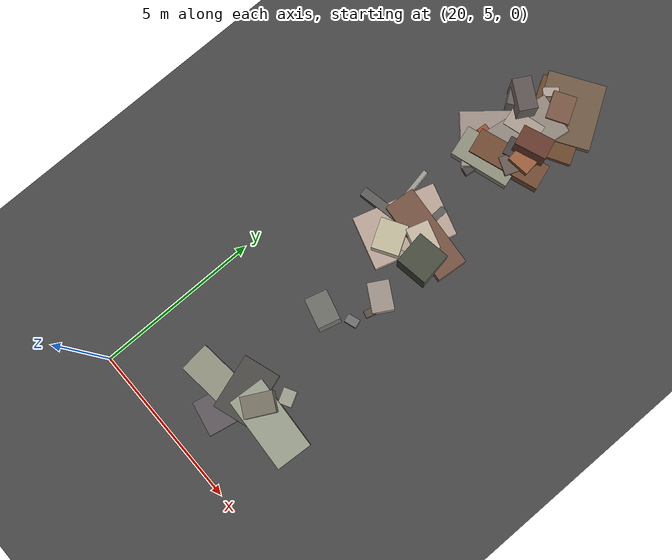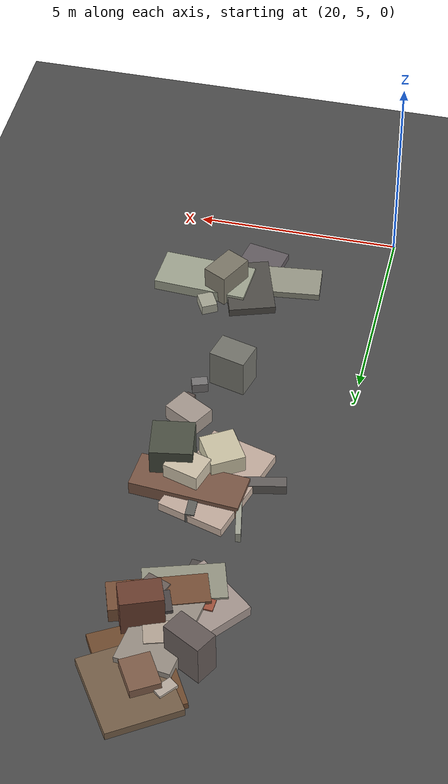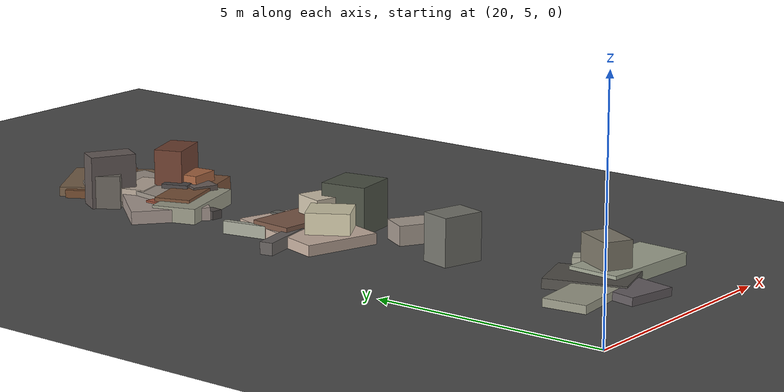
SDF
<sdf version="1.6">
 <world name="navitas_arena">
  <model name="ground_plane">
   <static>true</static>
   <link name="link">
    <collision name="collision">
     <geometry><plane><normal>0 0 1</normal><size>400 400</size></plane></geometry>
     <surface><friction><ode><mu>0.800</mu><mu2>0.800</mu2></ode></friction></surface>
    </collision>
    <visual name="visual">
     <cast_shadows>false</cast_shadows>
     <geometry><plane><normal>0 0 1</normal><size>400 400</size></plane></geometry>
     <material>
      <specular>0.04 0.04 0.04 1</specular>
      <script>
       <uri>file://media/materials/scripts/navitas_asphalt.material</uri>
       <name>Navitas/RealArenaAsphalt</name>
      </script>
     </material>
    </visual>
   </link>
  </model>
  <model name="deb_orta_0">
   <static>true</static>
   <pose>23.046 13.756 0.000 0 0 0</pose>
   <link name="link">
    <collision name="col_0">
     <pose>0.300 -0.395 0.130 0.000 0.000 0.429</pose>
     <geometry><box><size>1.065 0.187 0.261</size></box></geometry>
    </collision>
    <visual name="vis_0">
     <pose>0.300 -0.395 0.130 0.000 0.000 0.429</pose>
     <geometry><box><size>1.065 0.187 0.261</size></box></geometry>
     <material>
      <ambient>0.64 0.60 0.54 1</ambient>
      <diffuse>0.69 0.64 0.58 1</diffuse>
      <specular>0.05 0.05 0.045 1</specular>
     </material>
    </visual>
    <collision name="col_1">
     <pose>0.120 0.387 0.176 0.000 0.000 -0.086</pose>
     <geometry><box><size>2.604 0.951 0.352</size></box></geometry>
    </collision>
    <visual name="vis_1">
     <pose>0.120 0.387 0.176 0.000 0.000 -0.086</pose>
     <geometry><box><size>2.604 0.951 0.352</size></box></geometry>
     <material>
      <ambient>0.46 0.32 0.26 1</ambient>
      <diffuse>0.49 0.35 0.28 1</diffuse>
      <specular>0.05 0.05 0.045 1</specular>
     </material>
    </visual>
    <collision name="col_2">
     <pose>-0.471 0.104 0.116 0.000 0.000 1.279</pose>
     <geometry><box><size>2.558 1.631 0.231</size></box></geometry>
    </collision>
    <visual name="vis_2">
     <pose>-0.471 0.104 0.116 0.000 0.000 1.279</pose>
     <geometry><box><size>2.558 1.631 0.231</size></box></geometry>
     <material>
      <ambient>0.72 0.64 0.58 1</ambient>
      <diffuse>0.78 0.69 0.63 1</diffuse>
      <specular>0.05 0.05 0.045 1</specular>
     </material>
    </visual>
    <collision name="col_3">
     <pose>-0.597 -0.077 0.092 0.000 0.000 0.072</pose>
     <geometry><box><size>0.305 0.445 0.184</size></box></geometry>
    </collision>
    <visual name="vis_3">
     <pose>-0.597 -0.077 0.092 0.000 0.000 0.072</pose>
     <geometry><box><size>0.305 0.445 0.184</size></box></geometry>
     <material>
      <ambient>0.35 0.33 0.31 1</ambient>
      <diffuse>0.38 0.36 0.34 1</diffuse>
      <specular>0.05 0.05 0.045 1</specular>
     </material>
    </visual>
   </link>
  </model>
  <model name="deb_orta_25">
   <static>true</static>
   <pose>22.710 17.313 0.000 0 0 0</pose>
   <link name="link">
    <collision name="col_0">
     <pose>0.329 0.282 0.139 0.000 0.000 3.646</pose>
     <geometry><box><size>0.196 0.266 0.279</size></box></geometry>
    </collision>
    <visual name="vis_0">
     <pose>0.329 0.282 0.139 0.000 0.000 3.646</pose>
     <geometry><box><size>0.196 0.266 0.279</size></box></geometry>
     <material>
      <ambient>0.30 0.28 0.28 1</ambient>
      <diffuse>0.32 0.30 0.31 1</diffuse>
      <specular>0.05 0.05 0.045 1</specular>
     </material>
    </visual>
    <collision name="col_1">
     <pose>0.397 0.122 0.174 0.000 0.000 2.142</pose>
     <geometry><box><size>0.183 0.192 0.348</size></box></geometry>
    </collision>
    <visual name="vis_1">
     <pose>0.397 0.122 0.174 0.000 0.000 2.142</pose>
     <geometry><box><size>0.183 0.192 0.348</size></box></geometry>
     <material>
      <ambient>0.30 0.30 0.30 1</ambient>
      <diffuse>0.32 0.33 0.33 1</diffuse>
      <specular>0.05 0.05 0.045 1</specular>
     </material>
    </visual>
    <collision name="col_2">
     <pose>-0.358 0.132 0.156 0.000 0.000 3.080</pose>
     <geometry><box><size>1.092 0.310 0.313</size></box></geometry>
    </collision>
    <visual name="vis_2">
     <pose>-0.358 0.132 0.156 0.000 0.000 3.080</pose>
     <geometry><box><size>1.092 0.310 0.313</size></box></geometry>
     <material>
      <ambient>0.59 0.31 0.22 1</ambient>
      <diffuse>0.64 0.33 0.24 1</diffuse>
      <specular>0.05 0.05 0.045 1</specular>
     </material>
    </visual>
    <collision name="col_3">
     <pose>0.358 0.125 0.197 0.000 0.000 3.471</pose>
     <geometry><box><size>2.241 0.785 0.393</size></box></geometry>
    </collision>
    <visual name="vis_3">
     <pose>0.358 0.125 0.197 0.000 0.000 3.471</pose>
     <geometry><box><size>2.241 0.785 0.393</size></box></geometry>
     <material>
      <ambient>0.44 0.29 0.20 1</ambient>
      <diffuse>0.48 0.32 0.22 1</diffuse>
      <specular>0.05 0.05 0.045 1</specular>
     </material>
    </visual>
    <collision name="col_4">
     <pose>-0.129 -0.293 0.164 0.000 0.000 3.441</pose>
     <geometry><box><size>1.838 0.967 0.329</size></box></geometry>
    </collision>
    <visual name="vis_4">
     <pose>-0.129 -0.293 0.164 0.000 0.000 3.441</pose>
     <geometry><box><size>1.838 0.967 0.329</size></box></geometry>
     <material>
      <ambient>0.56 0.55 0.49 1</ambient>
      <diffuse>0.60 0.60 0.53 1</diffuse>
      <specular>0.05 0.05 0.045 1</specular>
     </material>
    </visual>
    <collision name="col_5">
     <pose>-0.474 0.160 0.137 0.000 0.000 2.452</pose>
     <geometry><box><size>1.651 1.757 0.274</size></box></geometry>
    </collision>
    <visual name="vis_5">
     <pose>-0.474 0.160 0.137 0.000 0.000 2.452</pose>
     <geometry><box><size>1.651 1.757 0.274</size></box></geometry>
     <material>
      <ambient>0.61 0.55 0.53 1</ambient>
      <diffuse>0.66 0.60 0.57 1</diffuse>
      <specular>0.05 0.05 0.045 1</specular>
     </material>
    </visual>
   </link>
  </model>
  <model name="deb_orta_124">
   <static>true</static>
   <pose>23.177 13.627 0.000 0 0 0</pose>
   <link name="link">
    <collision name="col_0">
     <pose>0.519 -0.106 0.508 0.000 0.000 1.727</pose>
     <geometry><box><size>0.997 0.992 1.015</size></box></geometry>
    </collision>
    <visual name="vis_0">
     <pose>0.519 -0.106 0.508 0.000 0.000 1.727</pose>
     <geometry><box><size>0.997 0.992 1.015</size></box></geometry>
     <material>
      <ambient>0.28 0.29 0.25 1</ambient>
      <diffuse>0.30 0.32 0.27 1</diffuse>
      <specular>0.05 0.05 0.045 1</specular>
     </material>
    </visual>
    <collision name="col_1">
     <pose>-0.322 0.974 0.101 0.000 0.000 1.176</pose>
     <geometry><box><size>0.290 0.166 0.202</size></box></geometry>
    </collision>
    <visual name="vis_1">
     <pose>-0.322 0.974 0.101 0.000 0.000 1.176</pose>
     <geometry><box><size>0.290 0.166 0.202</size></box></geometry>
     <material>
      <ambient>0.64 0.37 0.26 1</ambient>
      <diffuse>0.69 0.39 0.28 1</diffuse>
      <specular>0.05 0.05 0.045 1</specular>
     </material>
    </visual>
    <collision name="col_2">
     <pose>-0.582 -0.354 0.341 0.000 0.000 2.109</pose>
     <geometry><box><size>0.919 0.825 0.683</size></box></geometry>
    </collision>
    <visual name="vis_2">
     <pose>-0.582 -0.354 0.341 0.000 0.000 2.109</pose>
     <geometry><box><size>0.919 0.825 0.683</size></box></geometry>
     <material>
      <ambient>0.75 0.72 0.61 1</ambient>
      <diffuse>0.81 0.78 0.66 1</diffuse>
      <specular>0.05 0.05 0.045 1</specular>
     </material>
    </visual>
    <collision name="col_3">
     <pose>-0.633 -0.574 0.088 0.000 0.000 1.496</pose>
     <geometry><box><size>0.363 0.410 0.177</size></box></geometry>
    </collision>
    <visual name="vis_3">
     <pose>-0.633 -0.574 0.088 0.000 0.000 1.496</pose>
     <geometry><box><size>0.363 0.410 0.177</size></box></geometry>
     <material>
      <ambient>0.39 0.36 0.32 1</ambient>
      <diffuse>0.42 0.39 0.35 1</diffuse>
      <specular>0.05 0.05 0.045 1</specular>
     </material>
    </visual>
    <collision name="col_4">
     <pose>-0.211 0.856 0.135 0.000 0.000 1.610</pose>
     <geometry><box><size>1.165 0.214 0.269</size></box></geometry>
    </collision>
    <visual name="vis_4">
     <pose>-0.211 0.856 0.135 0.000 0.000 1.610</pose>
     <geometry><box><size>1.165 0.214 0.269</size></box></geometry>
     <material>
      <ambient>0.36 0.36 0.34 1</ambient>
      <diffuse>0.39 0.39 0.37 1</diffuse>
      <specular>0.05 0.05 0.045 1</specular>
     </material>
    </visual>
    <collision name="col_5">
     <pose>-0.300 0.706 0.091 0.000 0.000 1.250</pose>
     <geometry><box><size>0.223 0.459 0.181</size></box></geometry>
    </collision>
    <visual name="vis_5">
     <pose>-0.300 0.706 0.091 0.000 0.000 1.250</pose>
     <geometry><box><size>0.223 0.459 0.181</size></box></geometry>
     <material>
      <ambient>0.49 0.37 0.30 1</ambient>
      <diffuse>0.53 0.39 0.32 1</diffuse>
      <specular>0.05 0.05 0.045 1</specular>
     </material>
    </visual>
   </link>
  </model>
  <model name="deb_orta_163">
   <static>true</static>
   <pose>22.908 14.654 0.000 0 0 0</pose>
   <link name="link">
    <collision name="col_0">
     <pose>0.348 -0.711 0.371 0.000 0.000 2.847</pose>
     <geometry><box><size>0.872 0.686 0.742</size></box></geometry>
    </collision>
    <visual name="vis_0">
     <pose>0.348 -0.711 0.371 0.000 0.000 2.847</pose>
     <geometry><box><size>0.872 0.686 0.742</size></box></geometry>
     <material>
      <ambient>0.76 0.72 0.63 1</ambient>
      <diffuse>0.82 0.77 0.68 1</diffuse>
      <specular>0.05 0.05 0.045 1</specular>
     </material>
    </visual>
    <collision name="col_1">
     <pose>0.300 -0.875 0.090 0.000 0.000 2.169</pose>
     <geometry><box><size>0.377 0.238 0.180</size></box></geometry>
    </collision>
    <visual name="vis_1">
     <pose>0.300 -0.875 0.090 0.000 0.000 2.169</pose>
     <geometry><box><size>0.377 0.238 0.180</size></box></geometry>
     <material>
      <ambient>0.63 0.62 0.54 1</ambient>
      <diffuse>0.68 0.67 0.59 1</diffuse>
      <specular>0.05 0.05 0.045 1</specular>
     </material>
    </visual>
    <collision name="col_2">
     <pose>-1.018 0.041 0.135 0.000 0.000 1.758</pose>
     <geometry><box><size>1.400 0.126 0.269</size></box></geometry>
    </collision>
    <visual name="vis_2">
     <pose>-1.018 0.041 0.135 0.000 0.000 1.758</pose>
     <geometry><box><size>1.400 0.126 0.269</size></box></geometry>
     <material>
      <ambient>0.60 0.61 0.56 1</ambient>
      <diffuse>0.65 0.66 0.60 1</diffuse>
      <specular>0.05 0.05 0.045 1</specular>
     </material>
    </visual>
    <collision name="col_3">
     <pose>-0.913 -0.833 0.129 0.000 0.000 3.338</pose>
     <geometry><box><size>2.005 0.281 0.259</size></box></geometry>
    </collision>
    <visual name="vis_3">
     <pose>-0.913 -0.833 0.129 0.000 0.000 3.338</pose>
     <geometry><box><size>2.005 0.281 0.259</size></box></geometry>
     <material>
      <ambient>0.37 0.35 0.34 1</ambient>
      <diffuse>0.40 0.38 0.37 1</diffuse>
      <specular>0.05 0.05 0.045 1</specular>
     </material>
    </visual>
   </link>
  </model>
  <model name="deb_orta_179">
   <static>true</static>
   <pose>22.877 11.279 0.000 0 0 0</pose>
   <link name="link">
    <collision name="col_0">
     <pose>0.972 0.274 0.102 0.000 0.000 2.866</pose>
     <geometry><box><size>0.213 0.478 0.205</size></box></geometry>
    </collision>
    <visual name="vis_0">
     <pose>0.972 0.274 0.102 0.000 0.000 2.866</pose>
     <geometry><box><size>0.213 0.478 0.205</size></box></geometry>
     <material>
      <ambient>0.34 0.29 0.28 1</ambient>
      <diffuse>0.37 0.32 0.30 1</diffuse>
      <specular>0.05 0.05 0.045 1</specular>
     </material>
    </visual>
    <collision name="col_1">
     <pose>0.092 -0.798 0.499 0.000 0.000 2.880</pose>
     <geometry><box><size>0.901 0.676 0.997</size></box></geometry>
    </collision>
    <visual name="vis_1">
     <pose>0.092 -0.798 0.499 0.000 0.000 2.880</pose>
     <geometry><box><size>0.901 0.676 0.997</size></box></geometry>
     <material>
      <ambient>0.42 0.42 0.40 1</ambient>
      <diffuse>0.46 0.46 0.43 1</diffuse>
      <specular>0.05 0.05 0.045 1</specular>
     </material>
    </visual>
    <collision name="col_2">
     <pose>0.805 -0.344 0.127 0.000 0.000 1.899</pose>
     <geometry><box><size>0.260 0.381 0.254</size></box></geometry>
    </collision>
    <visual name="vis_2">
     <pose>0.805 -0.344 0.127 0.000 0.000 1.899</pose>
     <geometry><box><size>0.260 0.381 0.254</size></box></geometry>
     <material>
      <ambient>0.43 0.42 0.42 1</ambient>
      <diffuse>0.47 0.46 0.46 1</diffuse>
      <specular>0.05 0.05 0.045 1</specular>
     </material>
    </visual>
    <collision name="col_3">
     <pose>0.816 0.711 0.209 0.000 0.000 2.622</pose>
     <geometry><box><size>0.884 0.643 0.417</size></box></geometry>
    </collision>
    <visual name="vis_3">
     <pose>0.816 0.711 0.209 0.000 0.000 2.622</pose>
     <geometry><box><size>0.884 0.643 0.417</size></box></geometry>
     <material>
      <ambient>0.61 0.57 0.53 1</ambient>
      <diffuse>0.66 0.61 0.57 1</diffuse>
      <specular>0.05 0.05 0.045 1</specular>
     </material>
    </visual>
   </link>
  </model>
  <model name="deb_orta_201">
   <static>true</static>
   <pose>22.341 18.041 0.000 0 0 0</pose>
   <link name="link">
    <collision name="col_0">
     <pose>0.258 0.394 0.197 0.000 0.000 0.284</pose>
     <geometry><box><size>1.084 0.573 0.395</size></box></geometry>
    </collision>
    <visual name="vis_0">
     <pose>0.258 0.394 0.197 0.000 0.000 0.284</pose>
     <geometry><box><size>1.084 0.573 0.395</size></box></geometry>
     <material>
      <ambient>0.67 0.61 0.55 1</ambient>
      <diffuse>0.72 0.66 0.60 1</diffuse>
      <specular>0.05 0.05 0.045 1</specular>
     </material>
    </visual>
    <collision name="col_1">
     <pose>-0.521 0.692 0.351 0.000 0.000 -0.941</pose>
     <geometry><box><size>0.561 0.383 0.702</size></box></geometry>
    </collision>
    <visual name="vis_1">
     <pose>-0.521 0.692 0.351 0.000 0.000 -0.941</pose>
     <geometry><box><size>0.561 0.383 0.702</size></box></geometry>
     <material>
      <ambient>0.39 0.37 0.34 1</ambient>
      <diffuse>0.42 0.40 0.37 1</diffuse>
      <specular>0.05 0.05 0.045 1</specular>
     </material>
    </visual>
    <collision name="col_2">
     <pose>0.928 0.053 0.577 0.000 0.000 0.365</pose>
     <geometry><box><size>0.968 0.618 1.154</size></box></geometry>
    </collision>
    <visual name="vis_2">
     <pose>0.928 0.053 0.577 0.000 0.000 0.365</pose>
     <geometry><box><size>0.968 0.618 1.154</size></box></geometry>
     <material>
      <ambient>0.40 0.23 0.18 1</ambient>
      <diffuse>0.43 0.25 0.19 1</diffuse>
      <specular>0.05 0.05 0.045 1</specular>
     </material>
    </visual>
    <collision name="col_3">
     <pose>-0.322 0.813 0.556 0.000 0.000 -0.513</pose>
     <geometry><box><size>0.976 0.556 1.112</size></box></geometry>
    </collision>
    <visual name="vis_3">
     <pose>-0.322 0.813 0.556 0.000 0.000 -0.513</pose>
     <geometry><box><size>0.976 0.556 1.112</size></box></geometry>
     <material>
      <ambient>0.37 0.33 0.32 1</ambient>
      <diffuse>0.40 0.36 0.35 1</diffuse>
      <specular>0.05 0.05 0.045 1</specular>
     </material>
    </visual>
    <collision name="col_4">
     <pose>0.234 0.300 0.184 0.000 0.000 -0.264</pose>
     <geometry><box><size>0.727 0.544 0.369</size></box></geometry>
    </collision>
    <visual name="vis_4">
     <pose>0.234 0.300 0.184 0.000 0.000 -0.264</pose>
     <geometry><box><size>0.727 0.544 0.369</size></box></geometry>
     <material>
      <ambient>0.48 0.45 0.39 1</ambient>
      <diffuse>0.52 0.48 0.43 1</diffuse>
      <specular>0.05 0.05 0.045 1</specular>
     </material>
    </visual>
    <collision name="col_5">
     <pose>0.285 -0.680 0.091 0.000 0.000 1.446</pose>
     <geometry><box><size>2.267 0.240 0.182</size></box></geometry>
    </collision>
    <visual name="vis_5">
     <pose>0.285 -0.680 0.091 0.000 0.000 1.446</pose>
     <geometry><box><size>2.267 0.240 0.182</size></box></geometry>
     <material>
      <ambient>0.30 0.28 0.27 1</ambient>
      <diffuse>0.32 0.30 0.29 1</diffuse>
      <specular>0.05 0.05 0.045 1</specular>
     </material>
    </visual>
   </link>
  </model>
  <model name="deb_orta_206">
   <static>true</static>
   <pose>22.812 17.732 0.000 0 0 0</pose>
   <link name="link">
    <collision name="col_0">
     <pose>0.564 0.025 0.310 0.000 0.000 1.688</pose>
     <geometry><box><size>0.712 0.683 0.619</size></box></geometry>
    </collision>
    <visual name="vis_0">
     <pose>0.564 0.025 0.310 0.000 0.000 1.688</pose>
     <geometry><box><size>0.712 0.683 0.619</size></box></geometry>
     <material>
      <ambient>0.61 0.37 0.24 1</ambient>
      <diffuse>0.66 0.40 0.26 1</diffuse>
      <specular>0.05 0.05 0.045 1</specular>
     </material>
    </visual>
    <collision name="col_1">
     <pose>0.476 -0.169 0.220 0.000 0.000 1.196</pose>
     <geometry><box><size>0.977 0.570 0.440</size></box></geometry>
    </collision>
    <visual name="vis_1">
     <pose>0.476 -0.169 0.220 0.000 0.000 1.196</pose>
     <geometry><box><size>0.977 0.570 0.440</size></box></geometry>
     <material>
      <ambient>0.40 0.35 0.33 1</ambient>
      <diffuse>0.43 0.38 0.36 1</diffuse>
      <specular>0.05 0.05 0.045 1</specular>
     </material>
    </visual>
    <collision name="col_2">
     <pose>0.119 0.004 0.232 0.000 0.000 0.363</pose>
     <geometry><box><size>0.458 0.578 0.465</size></box></geometry>
    </collision>
    <visual name="vis_2">
     <pose>0.119 0.004 0.232 0.000 0.000 0.363</pose>
     <geometry><box><size>0.458 0.578 0.465</size></box></geometry>
     <material>
      <ambient>0.28 0.26 0.26 1</ambient>
      <diffuse>0.30 0.28 0.28 1</diffuse>
      <specular>0.05 0.05 0.045 1</specular>
     </material>
    </visual>
    <collision name="col_3">
     <pose>-0.030 0.617 0.186 0.000 0.000 1.426</pose>
     <geometry><box><size>2.165 1.289 0.373</size></box></geometry>
    </collision>
    <visual name="vis_3">
     <pose>-0.030 0.617 0.186 0.000 0.000 1.426</pose>
     <geometry><box><size>2.165 1.289 0.373</size></box></geometry>
     <material>
      <ambient>0.56 0.53 0.49 1</ambient>
      <diffuse>0.61 0.57 0.53 1</diffuse>
      <specular>0.05 0.05 0.045 1</specular>
     </material>
    </visual>
   </link>
  </model>
  <model name="deb_orta_265">
   <static>true</static>
   <pose>23.057 19.463 0.000 0 0 0</pose>
   <link name="link">
    <collision name="col_0">
     <pose>-0.139 0.144 0.219 0.000 0.000 2.104</pose>
     <geometry><box><size>0.868 0.703 0.438</size></box></geometry>
    </collision>
    <visual name="vis_0">
     <pose>-0.139 0.144 0.219 0.000 0.000 2.104</pose>
     <geometry><box><size>0.868 0.703 0.438</size></box></geometry>
     <material>
      <ambient>0.47 0.35 0.27 1</ambient>
      <diffuse>0.51 0.37 0.29 1</diffuse>
      <specular>0.05 0.05 0.045 1</specular>
     </material>
    </visual>
    <collision name="col_1">
     <pose>0.008 -0.105 0.086 0.000 0.000 2.087</pose>
     <geometry><box><size>2.364 1.599 0.172</size></box></geometry>
    </collision>
    <visual name="vis_1">
     <pose>0.008 -0.105 0.086 0.000 0.000 2.087</pose>
     <geometry><box><size>2.364 1.599 0.172</size></box></geometry>
     <material>
      <ambient>0.41 0.28 0.18 1</ambient>
      <diffuse>0.45 0.30 0.19 1</diffuse>
      <specular>0.05 0.05 0.045 1</specular>
     </material>
    </visual>
    <collision name="col_2">
     <pose>-0.421 -0.453 0.080 0.000 0.000 2.438</pose>
     <geometry><box><size>0.476 0.168 0.160</size></box></geometry>
    </collision>
    <visual name="vis_2">
     <pose>-0.421 -0.453 0.080 0.000 0.000 2.438</pose>
     <geometry><box><size>0.476 0.168 0.160</size></box></geometry>
     <material>
      <ambient>0.29 0.28 0.26 1</ambient>
      <diffuse>0.31 0.31 0.28 1</diffuse>
      <specular>0.05 0.05 0.045 1</specular>
     </material>
    </visual>
    <collision name="col_3">
     <pose>-0.718 0.301 0.134 0.000 0.000 2.463</pose>
     <geometry><box><size>0.272 0.475 0.268</size></box></geometry>
    </collision>
    <visual name="vis_3">
     <pose>-0.718 0.301 0.134 0.000 0.000 2.463</pose>
     <geometry><box><size>0.272 0.475 0.268</size></box></geometry>
     <material>
      <ambient>0.67 0.63 0.58 1</ambient>
      <diffuse>0.73 0.68 0.63 1</diffuse>
      <specular>0.05 0.05 0.045 1</specular>
     </material>
    </visual>
    <collision name="col_4">
     <pose>-0.040 -0.743 0.139 0.000 0.000 2.588</pose>
     <geometry><box><size>0.272 0.187 0.277</size></box></geometry>
    </collision>
    <visual name="vis_4">
     <pose>-0.040 -0.743 0.139 0.000 0.000 2.588</pose>
     <geometry><box><size>0.272 0.187 0.277</size></box></geometry>
     <material>
      <ambient>0.41 0.26 0.21 1</ambient>
      <diffuse>0.44 0.28 0.23 1</diffuse>
      <specular>0.05 0.05 0.045 1</specular>
     </material>
    </visual>
    <collision name="col_5">
     <pose>-0.193 0.218 0.088 0.000 0.000 2.245</pose>
     <geometry><box><size>0.229 0.326 0.176</size></box></geometry>
    </collision>
    <visual name="vis_5">
     <pose>-0.193 0.218 0.088 0.000 0.000 2.245</pose>
     <geometry><box><size>0.229 0.326 0.176</size></box></geometry>
     <material>
      <ambient>0.45 0.35 0.24 1</ambient>
      <diffuse>0.49 0.38 0.26 1</diffuse>
      <specular>0.05 0.05 0.045 1</specular>
     </material>
    </visual>
    <collision name="col_6">
     <pose>0.044 0.341 0.104 0.000 0.000 2.143</pose>
     <geometry><box><size>2.041 1.754 0.207</size></box></geometry>
    </collision>
    <visual name="vis_6">
     <pose>0.044 0.341 0.104 0.000 0.000 2.143</pose>
     <geometry><box><size>2.041 1.754 0.207</size></box></geometry>
     <material>
      <ambient>0.44 0.35 0.27 1</ambient>
      <diffuse>0.47 0.38 0.29 1</diffuse>
      <specular>0.05 0.05 0.045 1</specular>
     </material>
    </visual>
   </link>
  </model>
  <model name="deb_orta_271">
   <static>true</static>
   <pose>23.413 7.584 0.000 0 0 0</pose>
   <link name="link">
    <collision name="col_0">
     <pose>-0.158 -0.190 0.102 0.000 0.000 1.887</pose>
     <geometry><box><size>1.670 1.141 0.203</size></box></geometry>
    </collision>
    <visual name="vis_0">
     <pose>-0.158 -0.190 0.102 0.000 0.000 1.887</pose>
     <geometry><box><size>1.670 1.141 0.203</size></box></geometry>
     <material>
      <ambient>0.30 0.29 0.27 1</ambient>
      <diffuse>0.32 0.31 0.29 1</diffuse>
      <specular>0.05 0.05 0.045 1</specular>
     </material>
    </visual>
    <collision name="col_1">
     <pose>0.981 -0.268 0.139 0.000 0.000 -0.061</pose>
     <geometry><box><size>2.304 1.112 0.278</size></box></geometry>
    </collision>
    <visual name="vis_1">
     <pose>0.981 -0.268 0.139 0.000 0.000 -0.061</pose>
     <geometry><box><size>2.304 1.112 0.278</size></box></geometry>
     <material>
      <ambient>0.59 0.61 0.54 1</ambient>
      <diffuse>0.64 0.66 0.58 1</diffuse>
      <specular>0.05 0.05 0.045 1</specular>
     </material>
    </visual>
    <collision name="col_2">
     <pose>0.732 0.573 0.127 0.000 0.000 2.070</pose>
     <geometry><box><size>0.469 0.390 0.254</size></box></geometry>
    </collision>
    <visual name="vis_2">
     <pose>0.732 0.573 0.127 0.000 0.000 2.070</pose>
     <geometry><box><size>0.469 0.390 0.254</size></box></geometry>
     <material>
      <ambient>0.61 0.61 0.54 1</ambient>
      <diffuse>0.66 0.66 0.59 1</diffuse>
      <specular>0.05 0.05 0.045 1</specular>
     </material>
    </visual>
    <collision name="col_3">
     <pose>0.404 -0.139 0.422 0.000 0.000 -0.485</pose>
     <geometry><box><size>0.622 0.916 0.844</size></box></geometry>
    </collision>
    <visual name="vis_3">
     <pose>0.404 -0.139 0.422 0.000 0.000 -0.485</pose>
     <geometry><box><size>0.622 0.916 0.844</size></box></geometry>
     <material>
      <ambient>0.46 0.45 0.39 1</ambient>
      <diffuse>0.50 0.48 0.42 1</diffuse>
      <specular>0.05 0.05 0.045 1</specular>
     </material>
    </visual>
    <collision name="col_4">
     <pose>-0.230 -0.969 0.085 0.000 0.000 1.372</pose>
     <geometry><box><size>1.419 1.060 0.170</size></box></geometry>
    </collision>
    <visual name="vis_4">
     <pose>-0.230 -0.969 0.085 0.000 0.000 1.372</pose>
     <geometry><box><size>1.419 1.060 0.170</size></box></geometry>
     <material>
      <ambient>0.37 0.35 0.36 1</ambient>
      <diffuse>0.40 0.37 0.39 1</diffuse>
      <specular>0.05 0.05 0.045 1</specular>
     </material>
    </visual>
    <collision name="col_5">
     <pose>-0.833 -0.601 0.085 0.000 0.000 0.104</pose>
     <geometry><box><size>2.101 0.914 0.171</size></box></geometry>
    </collision>
    <visual name="vis_5">
     <pose>-0.833 -0.601 0.085 0.000 0.000 0.104</pose>
     <geometry><box><size>2.101 0.914 0.171</size></box></geometry>
     <material>
      <ambient>0.56 0.56 0.50 1</ambient>
      <diffuse>0.61 0.61 0.54 1</diffuse>
      <specular>0.05 0.05 0.045 1</specular>
     </material>
    </visual>
   </link>
  </model>
 </world>
</sdf>
